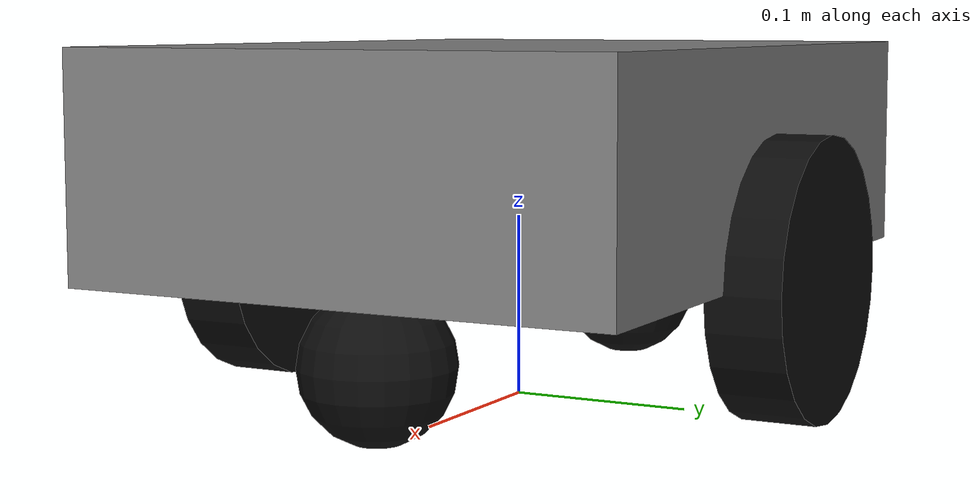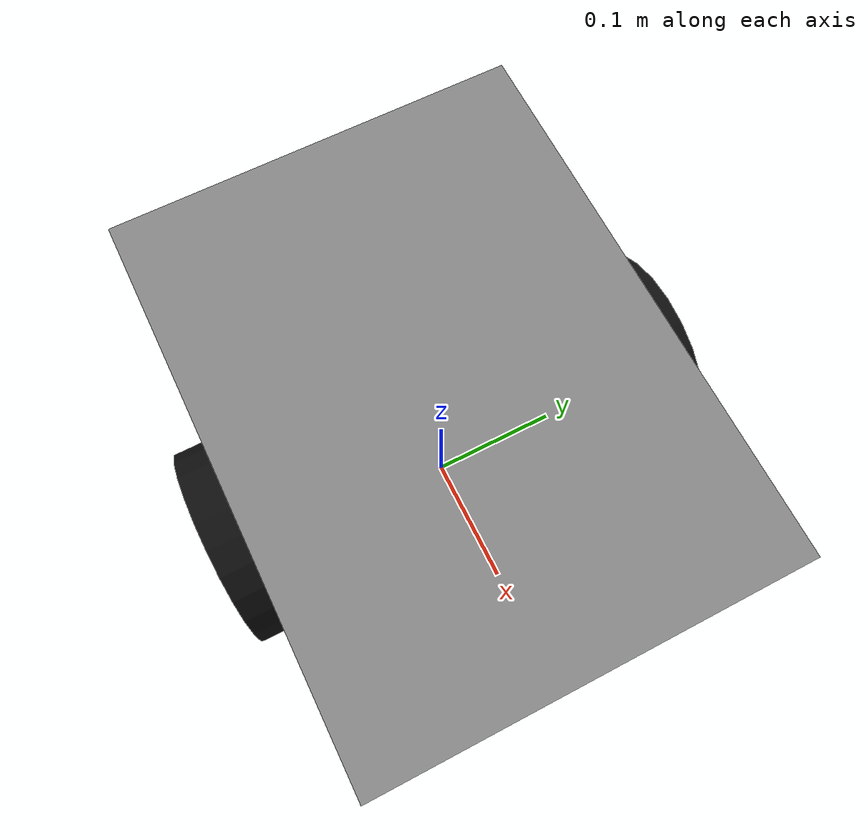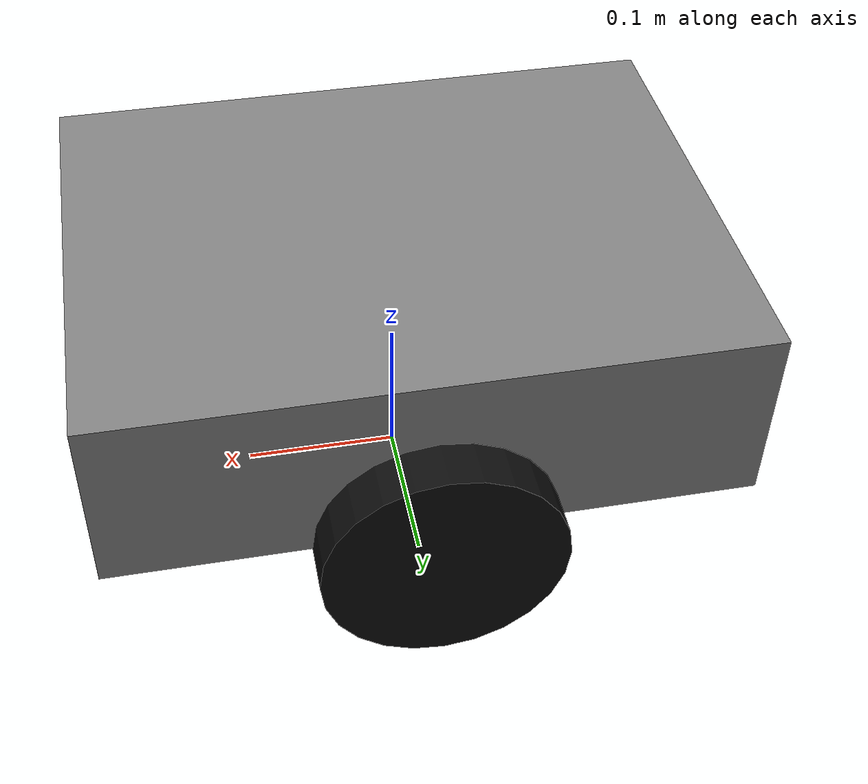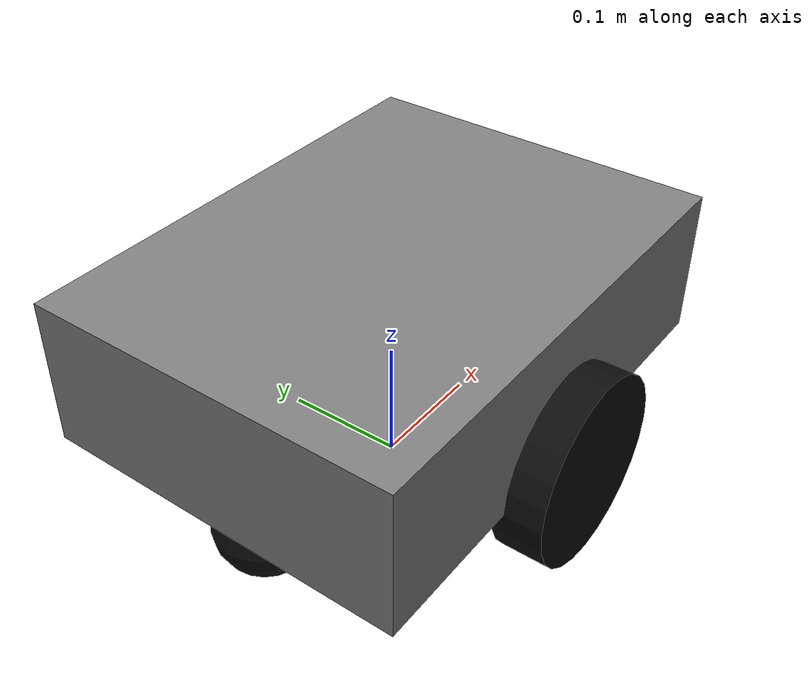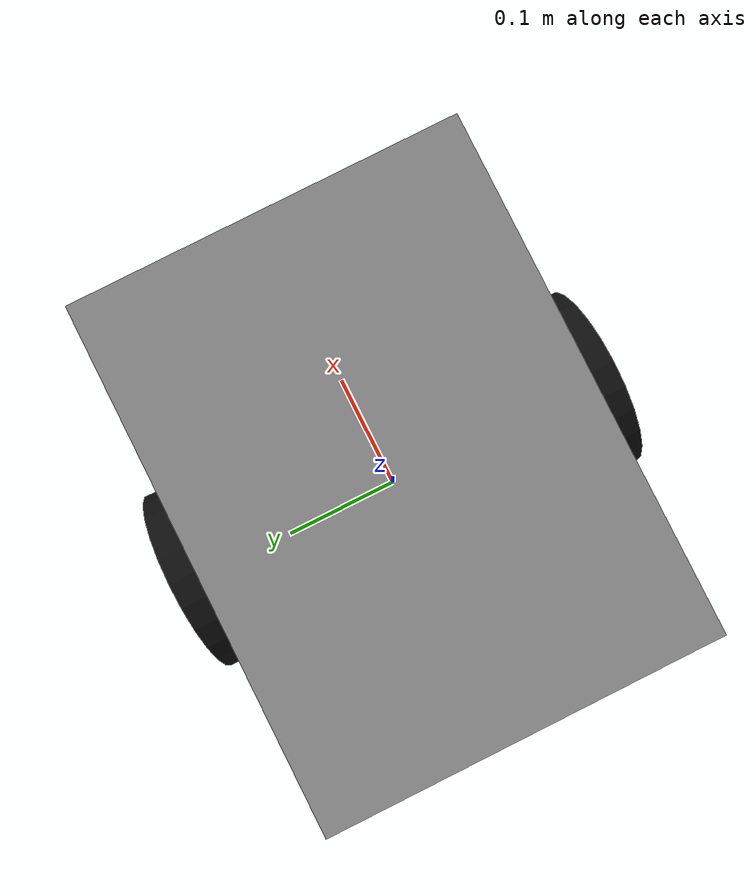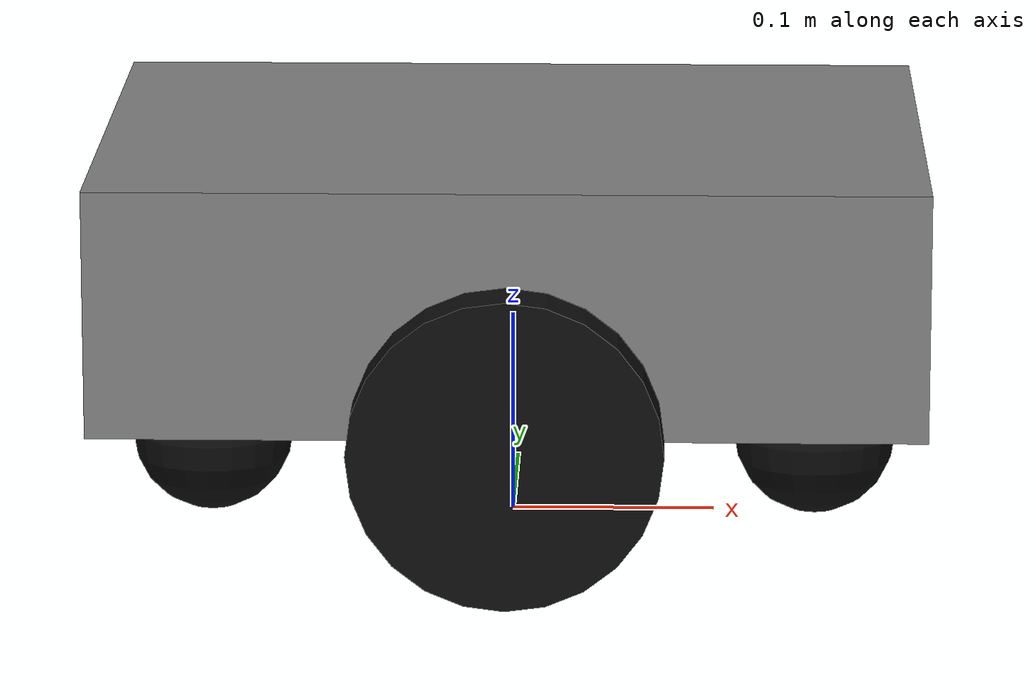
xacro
<?xml version="1.0"?>
<robot xmlns:xacro="http://www.ros.org/wiki/xacro"
       name="vbgc_rover">

  <!-- Robot properties                                     -->

  <xacro:property name="chassis_length" value="0.40"/>
  <xacro:property name="chassis_width"  value="0.30"/>
  <xacro:property name="chassis_height" value="0.12"/>

  <xacro:property name="wheel_radius" value="0.075"/>
  <xacro:property name="wheel_width"  value="0.04"/>

  <xacro:property name="wheel_y" value="0.16"/>
  <xacro:property name="wheel_x" value="0.0"/>

  <!-- Materials                                             -->

  <material name="black">
    <color rgba="0.05 0.05 0.05 1.0"/>
  </material>

  <material name="grey">
    <color rgba="0.5 0.5 0.5 1.0"/>
  </material>

  <!-- Base footprint                                        -->

  <link name="base_footprint"/>

  <!-- Main chassis                                          -->

  <link name="base_link">

    <visual>
      <origin xyz="0 0 0"/>
      <geometry>
        <box size="${chassis_length} ${chassis_width} ${chassis_height}"/>
      </geometry>
      <material name="grey"/>
    </visual>

    <collision>
      <origin xyz="0 0 0"/>
      <geometry>
        <box size="${chassis_length} ${chassis_width} ${chassis_height}"/>
      </geometry>
    </collision>

    <inertial>
      <origin xyz="0 0 0"/>
      <mass value="5.0"/>

      <inertia
        ixx="0.10"
        ixy="0.0"
        ixz="0.0"
        iyy="0.10"
        iyz="0.0"
        izz="0.10"/>
    </inertial>

  </link>

  <!-- Base footprint -> base link                           -->

  <joint name="base_footprint_joint"
         type="fixed">

    <parent link="base_footprint"/>
    <child link="base_link"/>

    <origin
      xyz="0 0 ${wheel_radius + chassis_height/2}"
      rpy="0 0 0"/>

  </joint>

  <!-- Left wheel                                            -->

  <link name="left_wheel">

    <visual>
      <origin xyz="0 0 0"
              rpy="1.5708 0 0"/>

      <geometry>
        <cylinder
          radius="${wheel_radius}"
          length="${wheel_width}"/>
      </geometry>

      <material name="black"/>
    </visual>

    <collision>
      <origin xyz="0 0 0"
              rpy="1.5708 0 0"/>

      <geometry>
        <cylinder
          radius="${wheel_radius}"
          length="${wheel_width}"/>
      </geometry>
    </collision>

    <inertial>
      <mass value="0.5"/>

      <inertia
        ixx="0.001"
        ixy="0.0"
        ixz="0.0"
        iyy="0.001"
        iyz="0.0"
        izz="0.001"/>
    </inertial>

  </link>

  <joint name="left_wheel_joint"
         type="continuous">

    <parent link="base_link"/>
    <child link="left_wheel"/>

    <origin
      xyz="${wheel_x} ${wheel_y} ${-chassis_height/2}"
      rpy="0 0 0"/>

    <axis xyz="0 1 0"/>

  </joint>

  <!-- Right wheel                                           -->

  <link name="right_wheel">

    <visual>
      <origin xyz="0 0 0"
              rpy="1.5708 0 0"/>

      <geometry>
        <cylinder
          radius="${wheel_radius}"
          length="${wheel_width}"/>
      </geometry>

      <material name="black"/>
    </visual>

    <collision>
      <origin xyz="0 0 0"
              rpy="1.5708 0 0"/>

      <geometry>
        <cylinder
          radius="${wheel_radius}"
          length="${wheel_width}"/>
      </geometry>
    </collision>

    <inertial>
      <mass value="0.5"/>

      <inertia
        ixx="0.001"
        ixy="0.0"
        ixz="0.0"
        iyy="0.001"
        iyz="0.0"
        izz="0.001"/>
    </inertial>

  </link>

  <joint name="right_wheel_joint"
         type="continuous">

    <parent link="base_link"/>
    <child link="right_wheel"/>

    <origin
      xyz="${wheel_x} -${wheel_y} ${-chassis_height/2}"
      rpy="0 0 0"/>

    <axis xyz="0 1 0"/>

  </joint>

  <!-- Front caster                                          -->

  <link name="front_caster">

    <visual>
      <geometry>
        <sphere radius="0.04"/>
      </geometry>

      <material name="black"/>
    </visual>

    <collision>
      <geometry>
        <sphere radius="0.04"/>
      </geometry>
    </collision>

    <inertial>
      <mass value="0.2"/>

      <inertia
        ixx="0.0001"
        ixy="0.0"
        ixz="0.0"
        iyy="0.0001"
        iyz="0.0"
        izz="0.0001"/>
    </inertial>

  </link>

  <joint name="front_caster_joint"
         type="fixed">

    <parent link="base_link"/>
    <child link="front_caster"/>

    <origin
      xyz="0.15 0 ${-chassis_height/2 - 0.035}"/>

  </joint>

  <!-- Rear caster                                           -->

  <link name="rear_caster">

    <visual>
      <geometry>
        <sphere radius="0.04"/>
      </geometry>

      <material name="black"/>
    </visual>

    <collision>
      <geometry>
        <sphere radius="0.04"/>
      </geometry>
    </collision>

    <inertial>
      <mass value="0.2"/>

      <inertia
        ixx="0.0001"
        ixy="0.0"
        ixz="0.0"
        iyy="0.0001"
        iyz="0.0"
        izz="0.0001"/>
    </inertial>

  </link>

  <joint name="rear_caster_joint"
         type="fixed">

    <parent link="base_link"/>
    <child link="rear_caster"/>

    <origin
      xyz="-0.15 0 ${-chassis_height/2 - 0.035}"/>

  </joint>

  <!-- Gazebo differential drive                             -->

  <gazebo>

    <plugin
      filename="gz-sim-diff-drive-system"
      name="gz::sim::systems::DiffDrive">

      <left_joint>left_wheel_joint</left_joint>
      <right_joint>right_wheel_joint</right_joint>

      <wheel_separation>0.32</wheel_separation>
      <wheel_radius>${wheel_radius}</wheel_radius>

      <topic>/cmd_vel</topic>

      <odom_topic>/odom</odom_topic>
      <tf_topic>/tf</tf_topic>

      <frame_id>odom</frame_id>
      <child_frame_id>base_footprint</child_frame_id>

      <odom_publish_frequency>30</odom_publish_frequency>

    </plugin>

  </gazebo>

</robot>
